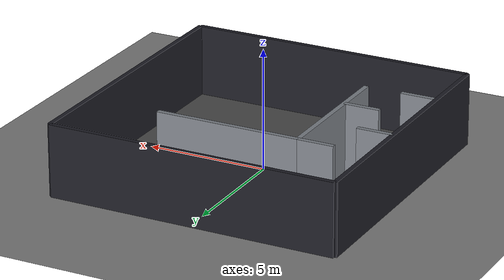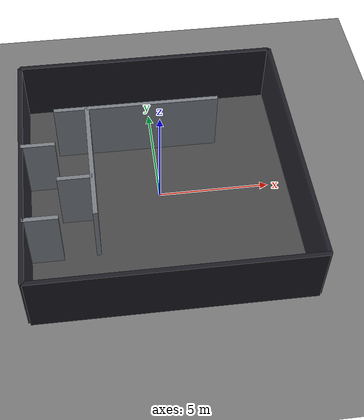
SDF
<?xml version="1.0"?>
<sdf version="1.6">
  <world name="my_room_world">
    <!-- Link Attacher 插件 - 用于灵巧手吸附抓取 -->
    <!-- max_attach_distance: 最大吸附距离(米)，超过此距离无法吸附 -->
    <plugin name="link_attacher_plugin" filename="libgazebo_ros_link_attacher.so">
      <min_attach_distance>0.0</min_attach_distance>
      <max_attach_distance>0.30</max_attach_distance>
    </plugin>

    <include>
      <uri>model://sun</uri>
    </include>
    <scene>
      <ambient>0.4 0.4 0.4 1</ambient>
      <background>0.7 0.7 0.7 1</background>
      <shadows>true</shadows>
    </scene>
    <model name="ground_plane">
      <static>true</static>
      <link name="link">
        <collision name="collision">
          <geometry>
            <plane>
              <normal>0 0 1</normal>
              <size>100 100</size>
            </plane>
          </geometry>
        </collision>
        <visual name="visual">
          <geometry>
            <plane>
              <normal>0 0 1</normal>
              <size>100 100</size>
            </plane>
          </geometry>
          <material>
            <ambient>0.5 0.5 0.5 1</ambient>
            <diffuse>0.5 0.5 0.5 1</diffuse>
          </material>
        </visual>
      </link>
    </model>
    <model name="my_room">
      <static>true</static>
      <link name="floor">
        <pose>0.0000 0.0000 0.001 0 0 0</pose>
        <visual name="visual">
          <geometry>
            <box>
              <size>12.0000 12.0000 0.002</size>
            </box>
          </geometry>
          <material>
            <ambient>0.25 0.25 0.25 1</ambient>
            <diffuse>0.3 0.3 0.3 1</diffuse>
          </material>
        </visual>
      </link>

      <link name="outer_wall_0_0">
        <pose>6.0000 0.0000 1.5000 0 0 -1.5708</pose>
        <collision name="collision">
          <geometry>
            <box>
              <size>12.0000 0.2000 3.0000</size>
            </box>
          </geometry>
        </collision>
        <visual name="visual">
          <geometry>
            <box>
              <size>12.0000 0.2000 3.0000</size>
            </box>
          </geometry>
          <material>
            <ambient>0.08 0.08 0.1 1</ambient>
            <diffuse>0.12 0.12 0.15 1</diffuse>
            <specular>0.1 0.1 0.1 1</specular>
          </material>
        </visual>
      </link>

      <link name="outer_wall_1_0">
        <pose>0.0000 -6.0000 1.5000 0 0 3.1416</pose>
        <collision name="collision">
          <geometry>
            <box>
              <size>12.0000 0.2000 3.0000</size>
            </box>
          </geometry>
        </collision>
        <visual name="visual">
          <geometry>
            <box>
              <size>12.0000 0.2000 3.0000</size>
            </box>
          </geometry>
          <material>
            <ambient>0.08 0.08 0.1 1</ambient>
            <diffuse>0.12 0.12 0.15 1</diffuse>
            <specular>0.1 0.1 0.1 1</specular>
          </material>
        </visual>
      </link>

      <link name="outer_wall_2_0">
        <pose>-6.0000 0.0000 1.5000 0 0 1.5708</pose>
        <collision name="collision">
          <geometry>
            <box>
              <size>12.0000 0.2000 3.0000</size>
            </box>
          </geometry>
        </collision>
        <visual name="visual">
          <geometry>
            <box>
              <size>12.0000 0.2000 3.0000</size>
            </box>
          </geometry>
          <material>
            <ambient>0.08 0.08 0.1 1</ambient>
            <diffuse>0.12 0.12 0.15 1</diffuse>
            <specular>0.1 0.1 0.1 1</specular>
          </material>
        </visual>
      </link>

      <link name="outer_wall_3_0">
        <pose>0.0000 6.0000 1.5000 0 0 0.0000</pose>
        <collision name="collision">
          <geometry>
            <box>
              <size>12.0000 0.2000 3.0000</size>
            </box>
          </geometry>
        </collision>
        <visual name="visual">
          <geometry>
            <box>
              <size>12.0000 0.2000 3.0000</size>
            </box>
          </geometry>
          <material>
            <ambient>0.08 0.08 0.1 1</ambient>
            <diffuse>0.12 0.12 0.15 1</diffuse>
            <specular>0.1 0.1 0.1 1</specular>
          </material>
        </visual>
      </link>

      <link name="partition_0_0">
        <pose>-3.0000 0.0000 1.5000 0 0 1.5708</pose>
        <collision name="collision">
          <geometry>
            <box>
              <size>6.0000 0.2000 3.0000</size>
            </box>
          </geometry>
        </collision>
        <visual name="visual">
          <geometry>
            <box>
              <size>6.0000 0.2000 3.0000</size>
            </box>
          </geometry>
          <material>
            <ambient>0.4 0.42 0.45 1</ambient>
            <diffuse>0.5 0.52 0.55 1</diffuse>
            <specular>0.1 0.1 0.1 1</specular>
          </material>
        </visual>
      </link>

      <link name="partition_1_0">
        <pose>0.0000 3.0000 1.5000 0 0 0.0000</pose>
        <collision name="collision">
          <geometry>
            <box>
              <size>6.0000 0.2000 3.0000</size>
            </box>
          </geometry>
        </collision>
        <visual name="visual">
          <geometry>
            <box>
              <size>6.0000 0.2000 3.0000</size>
            </box>
          </geometry>
          <material>
            <ambient>0.4 0.42 0.45 1</ambient>
            <diffuse>0.5 0.52 0.55 1</diffuse>
            <specular>0.1 0.1 0.1 1</specular>
          </material>
        </visual>
      </link>

      <link name="partition_2_0">
        <pose>-3.7500 3.0000 1.5000 0 0 3.1416</pose>
        <collision name="collision">
          <geometry>
            <box>
              <size>1.5000 0.2000 3.0000</size>
            </box>
          </geometry>
        </collision>
        <visual name="visual">
          <geometry>
            <box>
              <size>1.5000 0.2000 3.0000</size>
            </box>
          </geometry>
          <material>
            <ambient>0.4 0.42 0.45 1</ambient>
            <diffuse>0.5 0.52 0.55 1</diffuse>
            <specular>0.1 0.1 0.1 1</specular>
          </material>
        </visual>
      </link>

      <link name="partition_3_0">
        <pose>-5.2500 1.0000 1.5000 0 0 0.0000</pose>
        <collision name="collision">
          <geometry>
            <box>
              <size>1.5000 0.2000 3.0000</size>
            </box>
          </geometry>
        </collision>
        <visual name="visual">
          <geometry>
            <box>
              <size>1.5000 0.2000 3.0000</size>
            </box>
          </geometry>
          <material>
            <ambient>0.4 0.42 0.45 1</ambient>
            <diffuse>0.5 0.52 0.55 1</diffuse>
            <specular>0.1 0.1 0.1 1</specular>
          </material>
        </visual>
      </link>

      <link name="partition_4_0">
        <pose>-3.7500 -1.0000 1.5000 0 0 3.1416</pose>
        <collision name="collision">
          <geometry>
            <box>
              <size>1.5000 0.2000 3.0000</size>
            </box>
          </geometry>
        </collision>
        <visual name="visual">
          <geometry>
            <box>
              <size>1.5000 0.2000 3.0000</size>
            </box>
          </geometry>
          <material>
            <ambient>0.4 0.42 0.45 1</ambient>
            <diffuse>0.5 0.52 0.55 1</diffuse>
            <specular>0.1 0.1 0.1 1</specular>
          </material>
        </visual>
      </link>

      <link name="partition_5_0">
        <pose>-5.2500 -3.0000 1.5000 0 0 0.0000</pose>
        <collision name="collision">
          <geometry>
            <box>
              <size>1.5000 0.2000 3.0000</size>
            </box>
          </geometry>
        </collision>
        <visual name="visual">
          <geometry>
            <box>
              <size>1.5000 0.2000 3.0000</size>
            </box>
          </geometry>
          <material>
            <ambient>0.4 0.42 0.45 1</ambient>
            <diffuse>0.5 0.52 0.55 1</diffuse>
            <specular>0.1 0.1 0.1 1</specular>
          </material>
        </visual>
      </link>

      <link name="ceiling_light">
        <pose>0.0000 0.0000 2.9000 0 0 0</pose>
        <light name="light" type="point">
          <pose>0 0 0 0 0 0</pose>
          <diffuse>1 1 1 1</diffuse>
          <specular>0.2 0.2 0.2 1</specular>
          <attenuation>
            <range>20</range>
            <constant>0.5</constant>
            <linear>0.01</linear>
            <quadratic>0.001</quadratic>
          </attenuation>
          <cast_shadows>false</cast_shadows>
        </light>
      </link>

    </model>
  </world>
</sdf>
